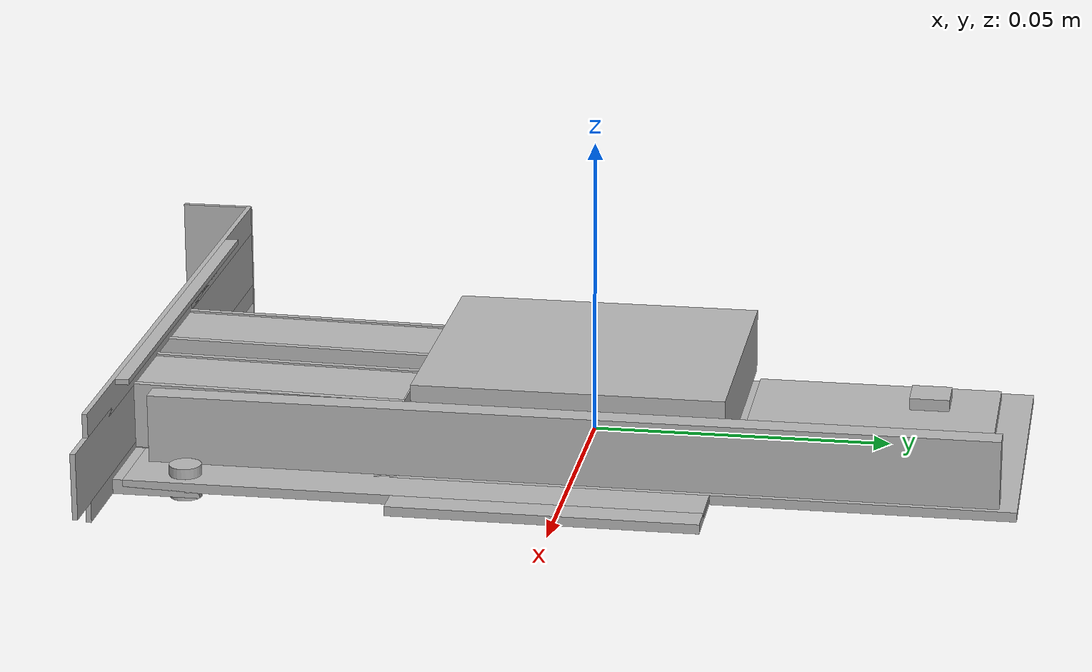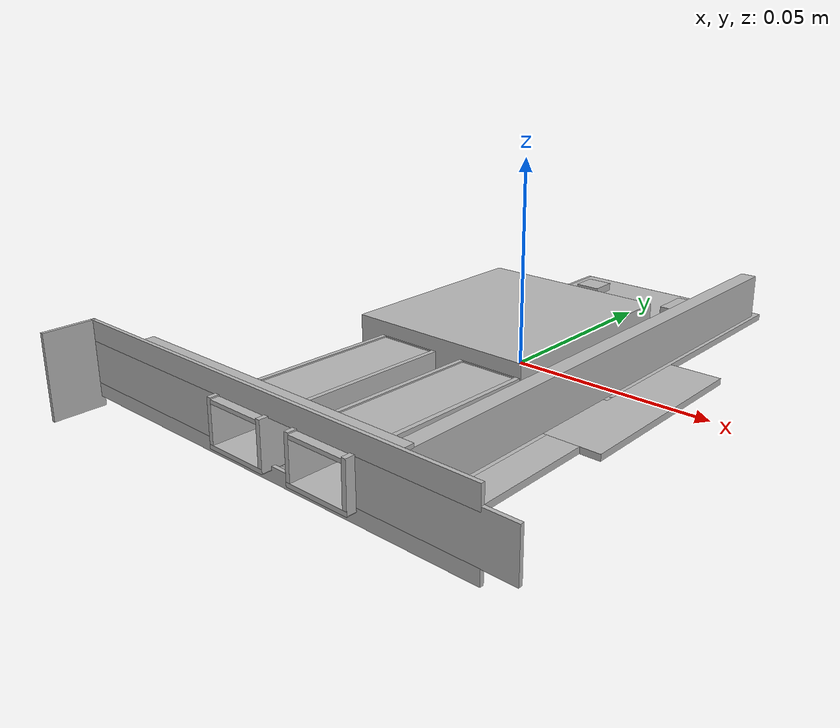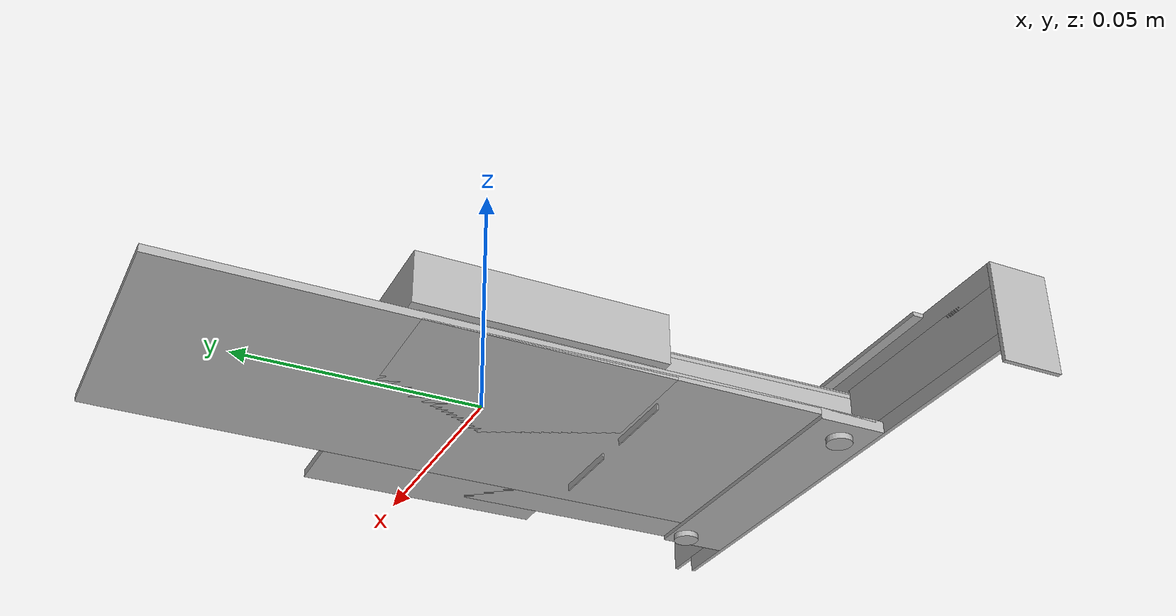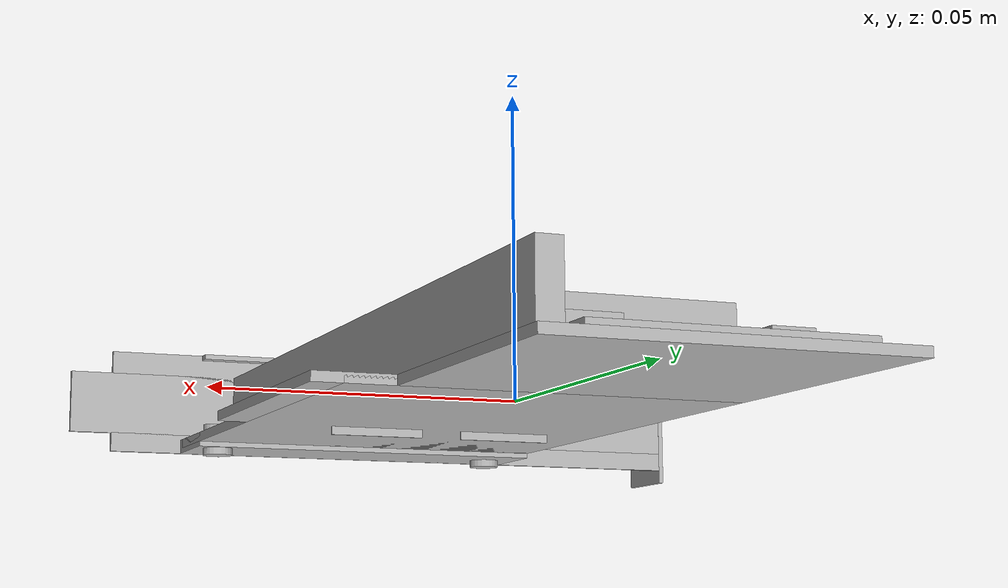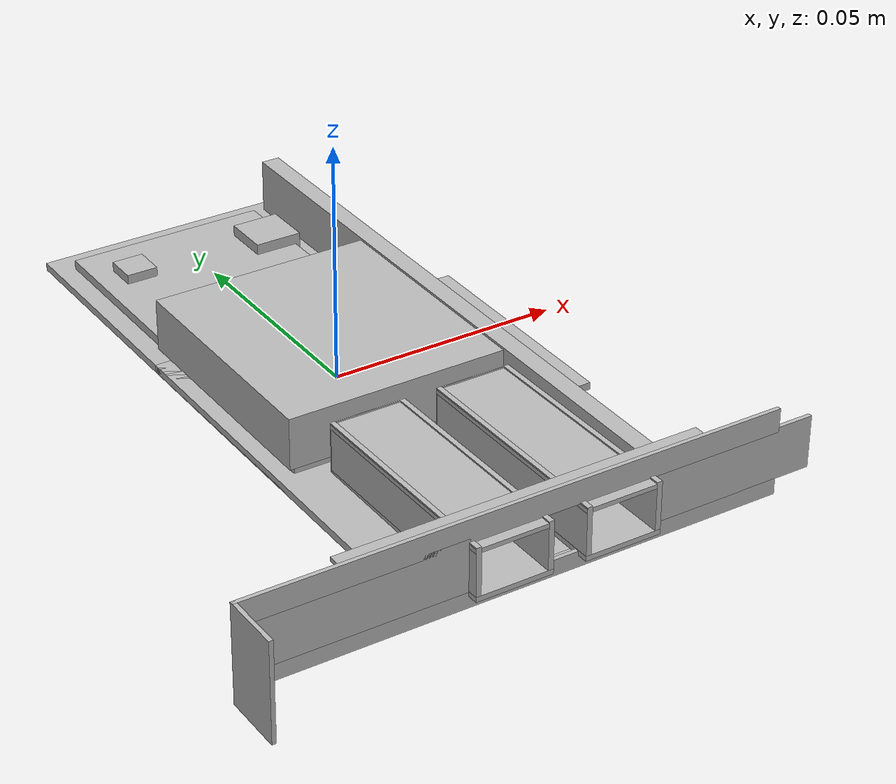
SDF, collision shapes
<?xml version="1.0" ?>
<sdf version="1.9">
  <model name="PCIe_NIC_Card">
    <link name="nic_card_link">
      <inertial auto="true">
        <mass>0.15</mass>
      </inertial>
      <visual name="nic_card_visual">
        <geometry>
          <mesh>
            <uri>nic_card_visual.glb</uri>
          </mesh>
        </geometry>
      </visual>
      <collision name="pcb_collider_box">
        <pose>0.0 0.0 -0.0008 0.0 0.0 0.0</pose>
        <geometry>
          <box>
            <size>0.056 0.145 0.0016</size>
          </box>
        </geometry>
      </collision>
      <collision name="pcb_collider_box.001">
        <pose>0.0065 -0.0025 -0.0008 0.0 0.0 0.0</pose>
        <geometry>
          <box>
            <size>0.069 0.051 0.0016</size>
          </box>
        </geometry>
      </collision>
      <collision name="pcb_collider_box.002">
        <pose>0.004 -0.02475 -0.0008 0.0 0.0 0.0</pose>
        <geometry>
          <box>
            <size>0.064 0.0955 0.0016</size>
          </box>
        </geometry>
      </collision>
      <collision name="cylinder015_collider_cylinder">
        <pose>0.03175 -0.063 -0.000988 0.0 0.0 0.0</pose>
        <geometry>
          <cylinder>
            <radius>0.00268</radius>
            <length>0.005514</length>
          </cylinder>
        </geometry>
      </collision>
      <collision name="cylinder017_collider_cylinder">
        <pose>-0.02225 -0.0675 -0.000986 0.0 0.0 0.0</pose>
        <geometry>
          <cylinder>
            <radius>0.00268</radius>
            <length>0.005518</length>
          </cylinder>
        </geometry>
      </collision>
      <collision name="pcb001_collider_box">
        <pose>0.015105 0.054161 0.001899 0.0 0.0 0.0</pose>
        <geometry>
          <box>
            <size>0.01025 0.01025 0.004603</size>
          </box>
        </geometry>
      </collision>
      <collision name="pcb024_collider_box">
        <pose>-0.015586 0.055516 0.001759 0.0 0.0 0.0</pose>
        <geometry>
          <box>
            <size>0.0068 0.0068 0.004324</size>
          </box>
        </geometry>
      </collision>
      <collision name="pcb033_collider_box">
        <pose>-0.002297 0.046302 0.000749 0.0 0.0 0.0</pose>
        <geometry>
          <box>
            <size>0.043074 0.041615 0.002303</size>
          </box>
        </geometry>
      </collision>
      <collision name="cube001_collider_box">
        <pose>0.025006 -0.00041 0.00575 0.0 0.0 0.0</pose>
        <geometry>
          <box>
            <size>0.004 0.14 0.0115</size>
          </box>
        </geometry>
      </collision>
      <collision name="cube001_collider_box.001">
        <pose>-0.0029 -0.0015 0.008 0.0 0.0 0.0</pose>
        <geometry>
          <box>
            <size>0.047 0.052 0.011</size>
          </box>
        </geometry>
      </collision>
      <collision name="10099100-011lfc001_collider_box">
        <pose>-0.017799 -0.052954 0.00548 3.128092 0.0 0.0</pose>
        <geometry>
          <box>
            <size>0.001099 0.04872 0.011083</size>
          </box>
        </geometry>
      </collision>
      <collision name="10099100-011lfc001_collider_box.001">
        <pose>-0.002687 -0.052954 0.005461 3.128092 0.0 0.0</pose>
        <geometry>
          <box>
            <size>0.001125 0.04872 0.011121</size>
          </box>
        </geometry>
      </collision>
      <collision name="10099100-011lfc001_collider_box.002">
        <pose>-0.010237 -0.052889 0.010234 3.128092 0.0 0.0</pose>
        <geometry>
          <box>
            <size>0.016224 0.04872 0.000923</size>
          </box>
        </geometry>
      </collision>
      <collision name="10099100-011lfc001_collider_box.003">
        <pose>-0.010237 -0.053024 0.000296 3.128092 0.0 0.0</pose>
        <geometry>
          <box>
            <size>0.016224 0.04872 0.001054</size>
          </box>
        </geometry>
      </collision>
      <collision name="10099100-011lfc001_collider_box.004">
        <pose>-0.010237 -0.028738 0.003845 3.128092 0.0 0.0</pose>
        <geometry>
          <box>
            <size>0.016224 0.00025 0.013698</size>
          </box>
        </geometry>
      </collision>
      <collision name="10099100-011lfc001_collider_box.005">
        <pose>0.005401 -0.052954 0.00548 3.128092 0.0 0.0</pose>
        <geometry>
          <box>
            <size>0.001099 0.04872 0.011083</size>
          </box>
        </geometry>
      </collision>
      <collision name="10099100-011lfc001_collider_box.006">
        <pose>0.020513 -0.052954 0.005461 3.128092 0.0 0.0</pose>
        <geometry>
          <box>
            <size>0.001125 0.04872 0.011121</size>
          </box>
        </geometry>
      </collision>
      <collision name="10099100-011lfc001_collider_box.007">
        <pose>0.012963 -0.052889 0.010234 3.128092 0.0 0.0</pose>
        <geometry>
          <box>
            <size>0.016224 0.04872 0.000923</size>
          </box>
        </geometry>
      </collision>
      <collision name="10099100-011lfc001_collider_box.008">
        <pose>0.012963 -0.053024 0.000296 3.128092 0.0 0.0</pose>
        <geometry>
          <box>
            <size>0.016224 0.04872 0.001054</size>
          </box>
        </geometry>
      </collision>
      <collision name="10099100-011lfc001_collider_box.009">
        <pose>0.012963 -0.028738 0.003845 3.128092 0.0 0.0</pose>
        <geometry>
          <box>
            <size>0.016224 0.00025 0.013698</size>
          </box>
        </geometry>
      </collision>
      <collision name="plane001_collider_box">
        <pose>-0.007649 -0.074646 -0.000751 0.0 0.0 0.0</pose>
        <geometry>
          <box>
            <size>0.113402 0.000875 0.003449</size>
          </box>
        </geometry>
      </collision>
      <collision name="plane001_collider_box.001">
        <pose>-0.007649 -0.074646 0.01352 0.0 0.0 0.0</pose>
        <geometry>
          <box>
            <size>0.113402 0.000875 0.00501</size>
          </box>
        </geometry>
      </collision>
      <collision name="plane001_collider_box.002">
        <pose>0.038559 -0.074646 0.006455 0.0 0.0 0.0</pose>
        <geometry>
          <box>
            <size>0.036181 0.000875 0.011123</size>
          </box>
        </geometry>
      </collision>
      <collision name="plane001_collider_box.003">
        <pose>-0.041261 -0.074646 0.006455 0.0 0.0 0.0</pose>
        <geometry>
          <box>
            <size>0.046178 0.000875 0.011123</size>
          </box>
        </geometry>
      </collision>
      <collision name="plane001_collider_box.004">
        <pose>-0.063913 -0.080558 0.005525 0.0 0.0 0.0</pose>
        <geometry>
          <box>
            <size>0.000875 0.0127 0.021</size>
          </box>
        </geometry>
      </collision>
      <collision name="plane001_collider_box.005">
        <pose>0.004 -0.067206 -0.001238 0.0 0.0 0.0</pose>
        <geometry>
          <box>
            <size>0.064 0.014996 0.002475</size>
          </box>
        </geometry>
      </collision>
      <collision name="cube001_collider_box.002">
        <pose>-0.0029 -0.0015 0.001228 0.0 0.0 0.0</pose>
        <geometry>
          <box>
            <size>0.043 0.048 0.003149</size>
          </box>
        </geometry>
      </collision>
      <collision name="plane001_collider_box.006">
        <pose>-0.005942 -0.073499 0.015586 0.0 0.0 0.0</pose>
        <geometry>
          <box>
            <size>0.076184 0.003168 0.000877</size>
          </box>
        </geometry>
      </collision>
    </link>

    <link name="sfp_port_0_link">
      <pose>0.01295 -0.031572 0.00501 4.69895 0 0</pose>
    </link>

    <joint name="sfp_port_0_joint" type="fixed">
      <parent>nic_card_link</parent>
      <child>sfp_port_0_link</child>
    </joint>

    <link name="sfp_port_0_link_entrance">
      <pose>0 0 -0.0458 0 0 0</pose>
    </link>

    <joint name="sfp_port_0_entrance_joint" type="fixed">
      <parent>sfp_port_0_link</parent>
      <child>sfp_port_0_link_entrance</child>
    </joint>

    <link name="sfp_port_1_link">
      <pose>-0.01025 -0.031572 0.00501 4.69895 0 0</pose>
    </link>

    <link name="sfp_port_1_link_entrance">
      <pose>0 0 -0.0458 0 0 0</pose>
    </link>

    <joint name="sfp_port_1_joint" type="fixed">
      <parent>nic_card_link</parent>
      <child>sfp_port_1_link</child>
    </joint>

    <joint name="sfp_port_1_entrance_joint" type="fixed">
      <parent>sfp_port_1_link</parent>
      <child>sfp_port_1_link_entrance</child>
    </joint>

  </model>
</sdf>
